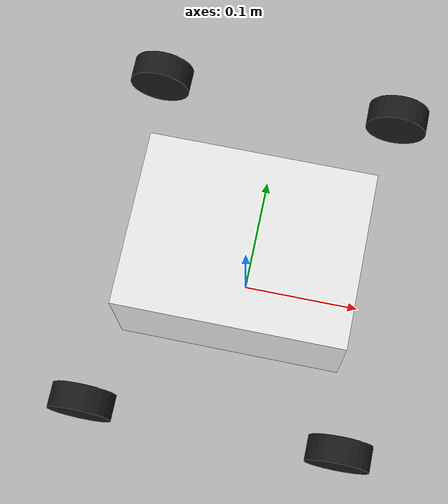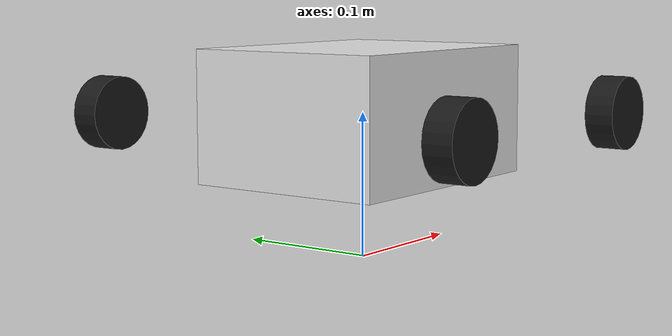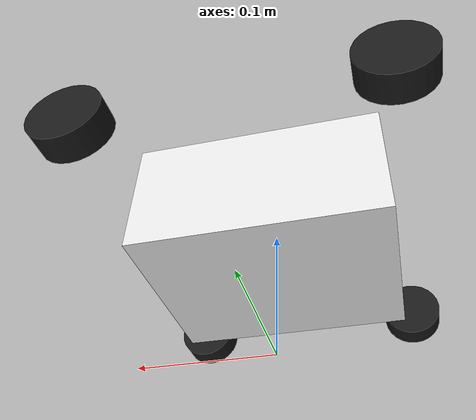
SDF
<?xml version="1.0" ?>
<sdf version="1.8">
  <model name="mecanum_robot">
    <pose>0 0 0.1 0 0 0</pose>

    <!-- Chassis -->
    <link name="base_link">
      <inertial>
        <mass>0.5</mass>
        <inertia>
          <ixx>0.02</ixx><iyy>0.02</iyy><izz>0.04</izz>
        </inertia>
      </inertial>
      <visual name="base_visual">
        <geometry>
          <box><size>0.18 0.14 0.09</size></box>
        </geometry>
        <material>
          <ambient>0.9 0.9 0.9 1</ambient>
          <diffuse>0.9 0.9 0.9 1</diffuse>
        </material>
      </visual>
      <collision name="base_collision">
        <geometry>
          <box><size>0.30 0.25 0.07</size></box>
        </geometry>
      </collision>
    </link>

    <!-- Roue Avant Gauche -->
    <link name="wheel_fl">
      <pose>0.10 0.14 0 1.5707 0 0</pose>
      <inertial><mass>0.05</mass>
        <inertia><ixx>0.001</ixx><iyy>0.001</iyy><izz>0.001</izz></inertia>
      </inertial>
      <visual name="vis">
        <geometry><cylinder><radius>0.025</radius><length>0.02</length></cylinder></geometry>
        <material><ambient>0.1 0.1 0.1 1</ambient><diffuse>0.1 0.1 0.1 1</diffuse></material>
      </visual>
      <collision name="col">
        <geometry><cylinder><radius>0.025</radius><length>0.02</length></cylinder></geometry>
      </collision>
    </link>
    <joint name="joint_fl" type="revolute">
      <parent>base_link</parent><child>wheel_fl</child>
      <axis><xyz>0 0 1</xyz></axis>
    </joint>

    <!-- Roue Avant Droite -->
    <link name="wheel_fr">
      <pose>0.10 -0.14 0 1.5707 0 0</pose>
      <inertial><mass>0.05</mass>
        <inertia><ixx>0.001</ixx><iyy>0.001</iyy><izz>0.001</izz></inertia>
      </inertial>
      <visual name="vis">
        <geometry><cylinder><radius>0.025</radius><length>0.02</length></cylinder></geometry>
        <material><ambient>0.1 0.1 0.1 1</ambient><diffuse>0.1 0.1 0.1 1</diffuse></material>
      </visual>
      <collision name="col">
        <geometry><cylinder><radius>0.025</radius><length>0.02</length></cylinder></geometry>
      </collision>
    </link>
    <joint name="joint_fr" type="revolute">
      <parent>base_link</parent><child>wheel_fr</child>
      <axis><xyz>0 0 1</xyz></axis>
    </joint>

    <!-- Roue Arrière Gauche -->
    <link name="wheel_rl">
      <pose>-0.10 0.14 0 1.5707 0 0</pose>
      <inertial><mass>0.05</mass>
        <inertia><ixx>0.001</ixx><iyy>0.001</iyy><izz>0.001</izz></inertia>
      </inertial>
      <visual name="vis">
        <geometry><cylinder><radius>0.025</radius><length>0.02</length></cylinder></geometry>
        <material><ambient>0.1 0.1 0.1 1</ambient><diffuse>0.1 0.1 0.1 1</diffuse></material>
      </visual>
      <collision name="col">
        <geometry><cylinder><radius>0.025</radius><length>0.02</length></cylinder></geometry>
      </collision>
    </link>
    <joint name="joint_rl" type="revolute">
      <parent>base_link</parent><child>wheel_rl</child>
      <axis><xyz>0 0 1</xyz></axis>
    </joint>

    <!-- Roue Arrière Droite -->
    <link name="wheel_rr">
      <pose>-0.10 -0.14 0 1.5707 0 0</pose>
      <inertial><mass>0.05</mass>
        <inertia><ixx>0.001</ixx><iyy>0.001</iyy><izz>0.001</izz></inertia>
      </inertial>
      <visual name="vis">
        <geometry><cylinder><radius>0.025</radius><length>0.02</length></cylinder></geometry>
        <material><ambient>0.1 0.1 0.1 1</ambient><diffuse>0.1 0.1 0.1 1</diffuse></material>
      </visual>
      <collision name="col">
        <geometry><cylinder><radius>0.025</radius><length>0.02</length></cylinder></geometry>
      </collision>
    </link>
    <joint name="joint_rr" type="revolute">
      <parent>base_link</parent><child>wheel_rr</child>
      <axis><xyz>0 0 1</xyz></axis>
    </joint>

    <!-- Plugin Mecanum -->
    <plugin filename="gz-sim-mecanum-drive-system"
            name="gz::sim::systems::MecanumDrive">
      <front_left_joint>joint_fl</front_left_joint>
      <front_right_joint>joint_fr</front_right_joint>
      <back_left_joint>joint_rl</back_left_joint>
      <back_right_joint>joint_rr</back_right_joint>
      <wheel_separation>0.28</wheel_separation>
      <wheelbase>0.20</wheelbase>
      <wheel_radius>0.05</wheel_radius>
      <topic>cmd_vel</topic>
      <odom_topic>odom</odom_topic>
    </plugin>

    <!-- Plugin odométrie -->
    <plugin filename="gz-sim-odometry-publisher-system"
            name="gz::sim::systems::OdometryPublisher">
      <odom_frame>odom</odom_frame>
      <robot_base_frame>base_link</robot_base_frame>
    </plugin>

  </model>
</sdf>
